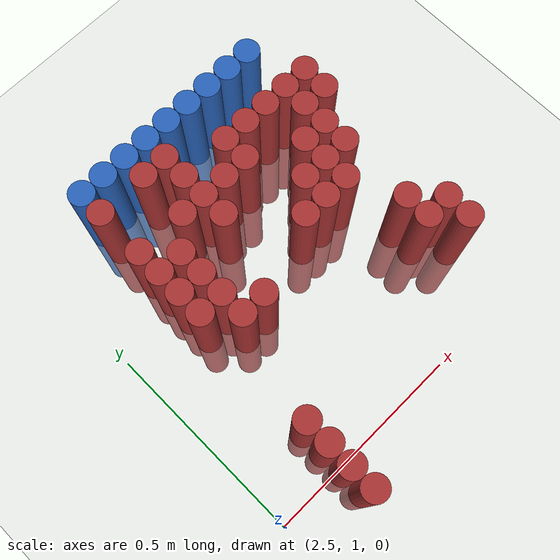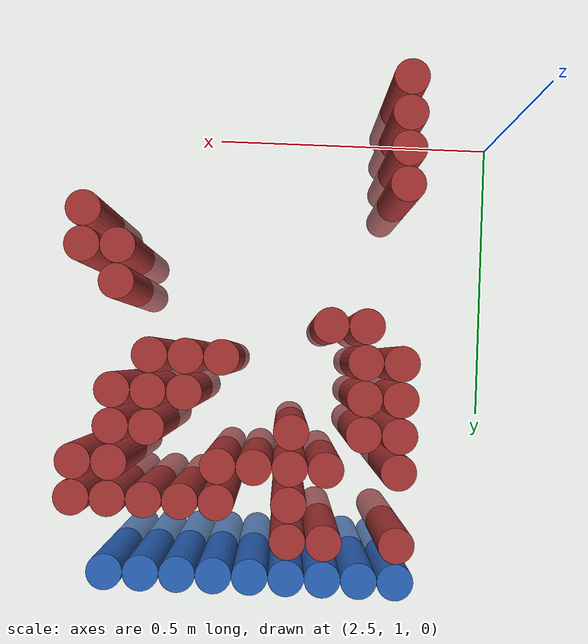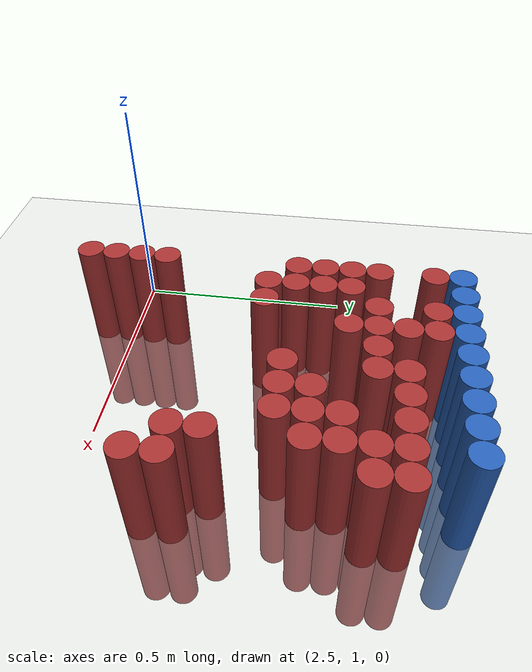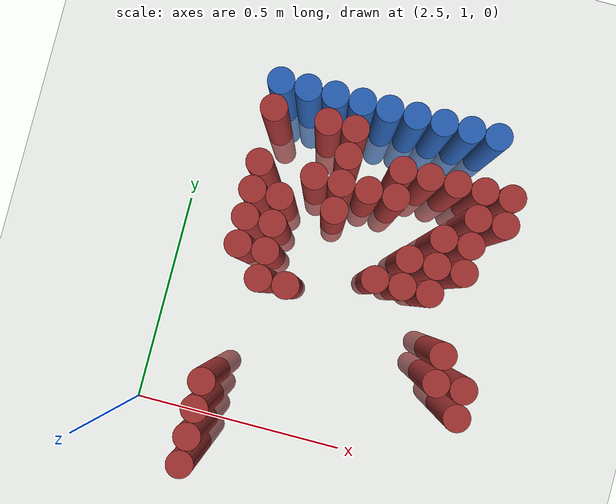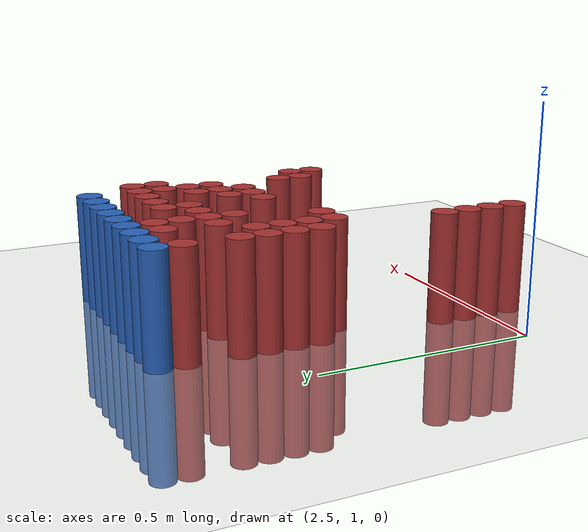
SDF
<sdf version="1.6">
 <world name="default">
  <model name="ground_plane">
   <static>1</static>
   <link name="link">
    <collision name="collision">
     <geometry><plane><normal>0 0 1</normal><size>100 100</size></plane></geometry>
     <surface><friction><ode><mu>100</mu><mu2>50</mu2></ode></friction></surface>
    </collision>
    <visual name="visual">
     <cast_shadows>0</cast_shadows>
     <geometry><plane><normal>0 0 1</normal><size>100 100</size></plane></geometry>
     <material>
      <script><uri>file://media/materials/scripts/gazebo.material</uri><name>Gazebo/Grey</name></script>
     </material>
    </visual>
   </link>
  </model>
  <model name="unit_cylinder_105">
   <static>1</static>
   <pose>2.670000 1.770000 0.000000 0.000000 0.000000 0.000000</pose>
   <link name="link">
    <inertial>
     <mass>1</mass>
     <inertia><ixx>0.145833</ixx><ixy>0</ixy><ixz>0</ixz><iyy>0.145833</iyy><iyz>0</iyz><izz>0.125</izz></inertia>
    </inertial>
    <collision name="collision">
     <geometry><cylinder><radius>0.030000</radius><length>0.5</length></cylinder></geometry>
    </collision>
    <visual name="visual">
     <geometry><cylinder><radius>0.030000</radius><length>0.5</length></cylinder></geometry>
     <material>
      <ambient>0.152000 0.379000 0.720000 1</ambient>
      <diffuse>0.152000 0.379000 0.720000 1</diffuse>
     </material>
     <material>
      <script><name>Gazebo/Grey</name><uri>file://media/materials/scripts/gazebo.material</uri></script>
     </material>
    </visual>
   </link>
  </model>
  <model name="unit_cylinder_106">
   <static>1</static>
   <pose>2.730000 1.770000 0.000000 0.000000 0.000000 0.000000</pose>
   <link name="link">
    <inertial>
     <mass>1</mass>
     <inertia><ixx>0.145833</ixx><ixy>0</ixy><ixz>0</ixz><iyy>0.145833</iyy><iyz>0</iyz><izz>0.125</izz></inertia>
    </inertial>
    <collision name="collision">
     <geometry><cylinder><radius>0.030000</radius><length>0.5</length></cylinder></geometry>
    </collision>
    <visual name="visual">
     <geometry><cylinder><radius>0.030000</radius><length>0.5</length></cylinder></geometry>
     <material>
      <ambient>0.152000 0.379000 0.720000 1</ambient>
      <diffuse>0.152000 0.379000 0.720000 1</diffuse>
     </material>
     <material>
      <script><name>Gazebo/Grey</name><uri>file://media/materials/scripts/gazebo.material</uri></script>
     </material>
    </visual>
   </link>
  </model>
  <model name="unit_cylinder_107">
   <static>1</static>
   <pose>2.790000 1.770000 0.000000 0.000000 0.000000 0.000000</pose>
   <link name="link">
    <inertial>
     <mass>1</mass>
     <inertia><ixx>0.145833</ixx><ixy>0</ixy><ixz>0</ixz><iyy>0.145833</iyy><iyz>0</iyz><izz>0.125</izz></inertia>
    </inertial>
    <collision name="collision">
     <geometry><cylinder><radius>0.030000</radius><length>0.5</length></cylinder></geometry>
    </collision>
    <visual name="visual">
     <geometry><cylinder><radius>0.030000</radius><length>0.5</length></cylinder></geometry>
     <material>
      <ambient>0.152000 0.379000 0.720000 1</ambient>
      <diffuse>0.152000 0.379000 0.720000 1</diffuse>
     </material>
     <material>
      <script><name>Gazebo/Grey</name><uri>file://media/materials/scripts/gazebo.material</uri></script>
     </material>
    </visual>
   </link>
  </model>
  <model name="unit_cylinder_108">
   <static>1</static>
   <pose>2.850000 1.770000 0.000000 0.000000 0.000000 0.000000</pose>
   <link name="link">
    <inertial>
     <mass>1</mass>
     <inertia><ixx>0.145833</ixx><ixy>0</ixy><ixz>0</ixz><iyy>0.145833</iyy><iyz>0</iyz><izz>0.125</izz></inertia>
    </inertial>
    <collision name="collision">
     <geometry><cylinder><radius>0.030000</radius><length>0.5</length></cylinder></geometry>
    </collision>
    <visual name="visual">
     <geometry><cylinder><radius>0.030000</radius><length>0.5</length></cylinder></geometry>
     <material>
      <ambient>0.152000 0.379000 0.720000 1</ambient>
      <diffuse>0.152000 0.379000 0.720000 1</diffuse>
     </material>
     <material>
      <script><name>Gazebo/Grey</name><uri>file://media/materials/scripts/gazebo.material</uri></script>
     </material>
    </visual>
   </link>
  </model>
  <model name="unit_cylinder_109">
   <static>1</static>
   <pose>2.910000 1.770000 0.000000 0.000000 0.000000 0.000000</pose>
   <link name="link">
    <inertial>
     <mass>1</mass>
     <inertia><ixx>0.145833</ixx><ixy>0</ixy><ixz>0</ixz><iyy>0.145833</iyy><iyz>0</iyz><izz>0.125</izz></inertia>
    </inertial>
    <collision name="collision">
     <geometry><cylinder><radius>0.030000</radius><length>0.5</length></cylinder></geometry>
    </collision>
    <visual name="visual">
     <geometry><cylinder><radius>0.030000</radius><length>0.5</length></cylinder></geometry>
     <material>
      <ambient>0.152000 0.379000 0.720000 1</ambient>
      <diffuse>0.152000 0.379000 0.720000 1</diffuse>
     </material>
     <material>
      <script><name>Gazebo/Grey</name><uri>file://media/materials/scripts/gazebo.material</uri></script>
     </material>
    </visual>
   </link>
  </model>
  <model name="unit_cylinder_110">
   <static>1</static>
   <pose>2.970000 1.770000 0.000000 0.000000 0.000000 0.000000</pose>
   <link name="link">
    <inertial>
     <mass>1</mass>
     <inertia><ixx>0.145833</ixx><ixy>0</ixy><ixz>0</ixz><iyy>0.145833</iyy><iyz>0</iyz><izz>0.125</izz></inertia>
    </inertial>
    <collision name="collision">
     <geometry><cylinder><radius>0.030000</radius><length>0.5</length></cylinder></geometry>
    </collision>
    <visual name="visual">
     <geometry><cylinder><radius>0.030000</radius><length>0.5</length></cylinder></geometry>
     <material>
      <ambient>0.152000 0.379000 0.720000 1</ambient>
      <diffuse>0.152000 0.379000 0.720000 1</diffuse>
     </material>
     <material>
      <script><name>Gazebo/Grey</name><uri>file://media/materials/scripts/gazebo.material</uri></script>
     </material>
    </visual>
   </link>
  </model>
  <model name="unit_cylinder_111">
   <static>1</static>
   <pose>3.030000 1.770000 0.000000 0.000000 0.000000 0.000000</pose>
   <link name="link">
    <inertial>
     <mass>1</mass>
     <inertia><ixx>0.145833</ixx><ixy>0</ixy><ixz>0</ixz><iyy>0.145833</iyy><iyz>0</iyz><izz>0.125</izz></inertia>
    </inertial>
    <collision name="collision">
     <geometry><cylinder><radius>0.030000</radius><length>0.5</length></cylinder></geometry>
    </collision>
    <visual name="visual">
     <geometry><cylinder><radius>0.030000</radius><length>0.5</length></cylinder></geometry>
     <material>
      <ambient>0.152000 0.379000 0.720000 1</ambient>
      <diffuse>0.152000 0.379000 0.720000 1</diffuse>
     </material>
     <material>
      <script><name>Gazebo/Grey</name><uri>file://media/materials/scripts/gazebo.material</uri></script>
     </material>
    </visual>
   </link>
  </model>
  <model name="unit_cylinder_112">
   <static>1</static>
   <pose>3.090000 1.770000 0.000000 0.000000 0.000000 0.000000</pose>
   <link name="link">
    <inertial>
     <mass>1</mass>
     <inertia><ixx>0.145833</ixx><ixy>0</ixy><ixz>0</ixz><iyy>0.145833</iyy><iyz>0</iyz><izz>0.125</izz></inertia>
    </inertial>
    <collision name="collision">
     <geometry><cylinder><radius>0.030000</radius><length>0.5</length></cylinder></geometry>
    </collision>
    <visual name="visual">
     <geometry><cylinder><radius>0.030000</radius><length>0.5</length></cylinder></geometry>
     <material>
      <ambient>0.152000 0.379000 0.720000 1</ambient>
      <diffuse>0.152000 0.379000 0.720000 1</diffuse>
     </material>
     <material>
      <script><name>Gazebo/Grey</name><uri>file://media/materials/scripts/gazebo.material</uri></script>
     </material>
    </visual>
   </link>
  </model>
  <model name="unit_cylinder_113">
   <static>1</static>
   <pose>3.150000 1.770000 0.000000 0.000000 0.000000 0.000000</pose>
   <link name="link">
    <inertial>
     <mass>1</mass>
     <inertia><ixx>0.145833</ixx><ixy>0</ixy><ixz>0</ixz><iyy>0.145833</iyy><iyz>0</iyz><izz>0.125</izz></inertia>
    </inertial>
    <collision name="collision">
     <geometry><cylinder><radius>0.030000</radius><length>0.5</length></cylinder></geometry>
    </collision>
    <visual name="visual">
     <geometry><cylinder><radius>0.030000</radius><length>0.5</length></cylinder></geometry>
     <material>
      <ambient>0.152000 0.379000 0.720000 1</ambient>
      <diffuse>0.152000 0.379000 0.720000 1</diffuse>
     </material>
     <material>
      <script><name>Gazebo/Grey</name><uri>file://media/materials/scripts/gazebo.material</uri></script>
     </material>
    </visual>
   </link>
  </model>
  <model name="unit_cylinder_127">
   <static>1</static>
   <pose>2.670000 1.710000 0.000000 0.000000 0.000000 0.000000</pose>
   <link name="link">
    <inertial>
     <mass>1</mass>
     <inertia><ixx>0.145833</ixx><ixy>0</ixy><ixz>0</ixz><iyy>0.145833</iyy><iyz>0</iyz><izz>0.125</izz></inertia>
    </inertial>
    <collision name="collision">
     <geometry><cylinder><radius>0.030000</radius><length>0.5</length></cylinder></geometry>
    </collision>
    <visual name="visual">
     <geometry><cylinder><radius>0.030000</radius><length>0.5</length></cylinder></geometry>
     <material>
      <ambient>0.648000 0.192000 0.192000 1</ambient>
      <diffuse>0.648000 0.192000 0.192000 1</diffuse>
     </material>
     <material>
      <script><name>Gazebo/Grey</name><uri>file://media/materials/scripts/gazebo.material</uri></script>
     </material>
    </visual>
   </link>
  </model>
  <model name="unit_cylinder_128">
   <static>1</static>
   <pose>2.790000 1.710000 0.000000 0.000000 0.000000 0.000000</pose>
   <link name="link">
    <inertial>
     <mass>1</mass>
     <inertia><ixx>0.145833</ixx><ixy>0</ixy><ixz>0</ixz><iyy>0.145833</iyy><iyz>0</iyz><izz>0.125</izz></inertia>
    </inertial>
    <collision name="collision">
     <geometry><cylinder><radius>0.030000</radius><length>0.5</length></cylinder></geometry>
    </collision>
    <visual name="visual">
     <geometry><cylinder><radius>0.030000</radius><length>0.5</length></cylinder></geometry>
     <material>
      <ambient>0.648000 0.192000 0.192000 1</ambient>
      <diffuse>0.648000 0.192000 0.192000 1</diffuse>
     </material>
     <material>
      <script><name>Gazebo/Grey</name><uri>file://media/materials/scripts/gazebo.material</uri></script>
     </material>
    </visual>
   </link>
  </model>
  <model name="unit_cylinder_129">
   <static>1</static>
   <pose>2.850000 1.710000 0.000000 0.000000 0.000000 0.000000</pose>
   <link name="link">
    <inertial>
     <mass>1</mass>
     <inertia><ixx>0.145833</ixx><ixy>0</ixy><ixz>0</ixz><iyy>0.145833</iyy><iyz>0</iyz><izz>0.125</izz></inertia>
    </inertial>
    <collision name="collision">
     <geometry><cylinder><radius>0.030000</radius><length>0.5</length></cylinder></geometry>
    </collision>
    <visual name="visual">
     <geometry><cylinder><radius>0.030000</radius><length>0.5</length></cylinder></geometry>
     <material>
      <ambient>0.648000 0.192000 0.192000 1</ambient>
      <diffuse>0.648000 0.192000 0.192000 1</diffuse>
     </material>
     <material>
      <script><name>Gazebo/Grey</name><uri>file://media/materials/scripts/gazebo.material</uri></script>
     </material>
    </visual>
   </link>
  </model>
  <model name="unit_cylinder_140">
   <static>1</static>
   <pose>2.850000 1.650000 0.000000 0.000000 0.000000 0.000000</pose>
   <link name="link">
    <inertial>
     <mass>1</mass>
     <inertia><ixx>0.145833</ixx><ixy>0</ixy><ixz>0</ixz><iyy>0.145833</iyy><iyz>0</iyz><izz>0.125</izz></inertia>
    </inertial>
    <collision name="collision">
     <geometry><cylinder><radius>0.030000</radius><length>0.5</length></cylinder></geometry>
    </collision>
    <visual name="visual">
     <geometry><cylinder><radius>0.030000</radius><length>0.5</length></cylinder></geometry>
     <material>
      <ambient>0.648000 0.192000 0.192000 1</ambient>
      <diffuse>0.648000 0.192000 0.192000 1</diffuse>
     </material>
     <material>
      <script><name>Gazebo/Grey</name><uri>file://media/materials/scripts/gazebo.material</uri></script>
     </material>
    </visual>
   </link>
  </model>
  <model name="unit_cylinder_141">
   <static>1</static>
   <pose>2.970000 1.650000 0.000000 0.000000 0.000000 0.000000</pose>
   <link name="link">
    <inertial>
     <mass>1</mass>
     <inertia><ixx>0.145833</ixx><ixy>0</ixy><ixz>0</ixz><iyy>0.145833</iyy><iyz>0</iyz><izz>0.125</izz></inertia>
    </inertial>
    <collision name="collision">
     <geometry><cylinder><radius>0.030000</radius><length>0.5</length></cylinder></geometry>
    </collision>
    <visual name="visual">
     <geometry><cylinder><radius>0.030000</radius><length>0.5</length></cylinder></geometry>
     <material>
      <ambient>0.648000 0.192000 0.192000 1</ambient>
      <diffuse>0.648000 0.192000 0.192000 1</diffuse>
     </material>
     <material>
      <script><name>Gazebo/Grey</name><uri>file://media/materials/scripts/gazebo.material</uri></script>
     </material>
    </visual>
   </link>
  </model>
  <model name="unit_cylinder_142">
   <static>1</static>
   <pose>3.030000 1.650000 0.000000 0.000000 0.000000 0.000000</pose>
   <link name="link">
    <inertial>
     <mass>1</mass>
     <inertia><ixx>0.145833</ixx><ixy>0</ixy><ixz>0</ixz><iyy>0.145833</iyy><iyz>0</iyz><izz>0.125</izz></inertia>
    </inertial>
    <collision name="collision">
     <geometry><cylinder><radius>0.030000</radius><length>0.5</length></cylinder></geometry>
    </collision>
    <visual name="visual">
     <geometry><cylinder><radius>0.030000</radius><length>0.5</length></cylinder></geometry>
     <material>
      <ambient>0.648000 0.192000 0.192000 1</ambient>
      <diffuse>0.648000 0.192000 0.192000 1</diffuse>
     </material>
     <material>
      <script><name>Gazebo/Grey</name><uri>file://media/materials/scripts/gazebo.material</uri></script>
     </material>
    </visual>
   </link>
  </model>
  <model name="unit_cylinder_143">
   <static>1</static>
   <pose>3.090000 1.650000 0.000000 0.000000 0.000000 0.000000</pose>
   <link name="link">
    <inertial>
     <mass>1</mass>
     <inertia><ixx>0.145833</ixx><ixy>0</ixy><ixz>0</ixz><iyy>0.145833</iyy><iyz>0</iyz><izz>0.125</izz></inertia>
    </inertial>
    <collision name="collision">
     <geometry><cylinder><radius>0.030000</radius><length>0.5</length></cylinder></geometry>
    </collision>
    <visual name="visual">
     <geometry><cylinder><radius>0.030000</radius><length>0.5</length></cylinder></geometry>
     <material>
      <ambient>0.648000 0.192000 0.192000 1</ambient>
      <diffuse>0.648000 0.192000 0.192000 1</diffuse>
     </material>
     <material>
      <script><name>Gazebo/Grey</name><uri>file://media/materials/scripts/gazebo.material</uri></script>
     </material>
    </visual>
   </link>
  </model>
  <model name="unit_cylinder_144">
   <static>1</static>
   <pose>3.150000 1.650000 0.000000 0.000000 0.000000 0.000000</pose>
   <link name="link">
    <inertial>
     <mass>1</mass>
     <inertia><ixx>0.145833</ixx><ixy>0</ixy><ixz>0</ixz><iyy>0.145833</iyy><iyz>0</iyz><izz>0.125</izz></inertia>
    </inertial>
    <collision name="collision">
     <geometry><cylinder><radius>0.030000</radius><length>0.5</length></cylinder></geometry>
    </collision>
    <visual name="visual">
     <geometry><cylinder><radius>0.030000</radius><length>0.5</length></cylinder></geometry>
     <material>
      <ambient>0.648000 0.192000 0.192000 1</ambient>
      <diffuse>0.648000 0.192000 0.192000 1</diffuse>
     </material>
     <material>
      <script><name>Gazebo/Grey</name><uri>file://media/materials/scripts/gazebo.material</uri></script>
     </material>
    </visual>
   </link>
  </model>
  <model name="unit_cylinder_145">
   <static>1</static>
   <pose>3.210000 1.650000 0.000000 0.000000 0.000000 0.000000</pose>
   <link name="link">
    <inertial>
     <mass>1</mass>
     <inertia><ixx>0.145833</ixx><ixy>0</ixy><ixz>0</ixz><iyy>0.145833</iyy><iyz>0</iyz><izz>0.125</izz></inertia>
    </inertial>
    <collision name="collision">
     <geometry><cylinder><radius>0.030000</radius><length>0.5</length></cylinder></geometry>
    </collision>
    <visual name="visual">
     <geometry><cylinder><radius>0.030000</radius><length>0.5</length></cylinder></geometry>
     <material>
      <ambient>0.648000 0.192000 0.192000 1</ambient>
      <diffuse>0.648000 0.192000 0.192000 1</diffuse>
     </material>
     <material>
      <script><name>Gazebo/Grey</name><uri>file://media/materials/scripts/gazebo.material</uri></script>
     </material>
    </visual>
   </link>
  </model>
  <model name="unit_cylinder_157">
   <static>1</static>
   <pose>2.670000 1.590000 0.000000 0.000000 0.000000 0.000000</pose>
   <link name="link">
    <inertial>
     <mass>1</mass>
     <inertia><ixx>0.145833</ixx><ixy>0</ixy><ixz>0</ixz><iyy>0.145833</iyy><iyz>0</iyz><izz>0.125</izz></inertia>
    </inertial>
    <collision name="collision">
     <geometry><cylinder><radius>0.030000</radius><length>0.5</length></cylinder></geometry>
    </collision>
    <visual name="visual">
     <geometry><cylinder><radius>0.030000</radius><length>0.5</length></cylinder></geometry>
     <material>
      <ambient>0.648000 0.192000 0.192000 1</ambient>
      <diffuse>0.648000 0.192000 0.192000 1</diffuse>
     </material>
     <material>
      <script><name>Gazebo/Grey</name><uri>file://media/materials/scripts/gazebo.material</uri></script>
     </material>
    </visual>
   </link>
  </model>
  <model name="unit_cylinder_158">
   <static>1</static>
   <pose>2.790000 1.590000 0.000000 0.000000 0.000000 0.000000</pose>
   <link name="link">
    <inertial>
     <mass>1</mass>
     <inertia><ixx>0.145833</ixx><ixy>0</ixy><ixz>0</ixz><iyy>0.145833</iyy><iyz>0</iyz><izz>0.125</izz></inertia>
    </inertial>
    <collision name="collision">
     <geometry><cylinder><radius>0.030000</radius><length>0.5</length></cylinder></geometry>
    </collision>
    <visual name="visual">
     <geometry><cylinder><radius>0.030000</radius><length>0.5</length></cylinder></geometry>
     <material>
      <ambient>0.648000 0.192000 0.192000 1</ambient>
      <diffuse>0.648000 0.192000 0.192000 1</diffuse>
     </material>
     <material>
      <script><name>Gazebo/Grey</name><uri>file://media/materials/scripts/gazebo.material</uri></script>
     </material>
    </visual>
   </link>
  </model>
  <model name="unit_cylinder_159">
   <static>1</static>
   <pose>2.850000 1.590000 0.000000 0.000000 0.000000 0.000000</pose>
   <link name="link">
    <inertial>
     <mass>1</mass>
     <inertia><ixx>0.145833</ixx><ixy>0</ixy><ixz>0</ixz><iyy>0.145833</iyy><iyz>0</iyz><izz>0.125</izz></inertia>
    </inertial>
    <collision name="collision">
     <geometry><cylinder><radius>0.030000</radius><length>0.5</length></cylinder></geometry>
    </collision>
    <visual name="visual">
     <geometry><cylinder><radius>0.030000</radius><length>0.5</length></cylinder></geometry>
     <material>
      <ambient>0.648000 0.192000 0.192000 1</ambient>
      <diffuse>0.648000 0.192000 0.192000 1</diffuse>
     </material>
     <material>
      <script><name>Gazebo/Grey</name><uri>file://media/materials/scripts/gazebo.material</uri></script>
     </material>
    </visual>
   </link>
  </model>
  <model name="unit_cylinder_160">
   <static>1</static>
   <pose>2.910000 1.590000 0.000000 0.000000 0.000000 0.000000</pose>
   <link name="link">
    <inertial>
     <mass>1</mass>
     <inertia><ixx>0.145833</ixx><ixy>0</ixy><ixz>0</ixz><iyy>0.145833</iyy><iyz>0</iyz><izz>0.125</izz></inertia>
    </inertial>
    <collision name="collision">
     <geometry><cylinder><radius>0.030000</radius><length>0.5</length></cylinder></geometry>
    </collision>
    <visual name="visual">
     <geometry><cylinder><radius>0.030000</radius><length>0.5</length></cylinder></geometry>
     <material>
      <ambient>0.648000 0.192000 0.192000 1</ambient>
      <diffuse>0.648000 0.192000 0.192000 1</diffuse>
     </material>
     <material>
      <script><name>Gazebo/Grey</name><uri>file://media/materials/scripts/gazebo.material</uri></script>
     </material>
    </visual>
   </link>
  </model>
  <model name="unit_cylinder_161">
   <static>1</static>
   <pose>2.970000 1.590000 0.000000 0.000000 0.000000 0.000000</pose>
   <link name="link">
    <inertial>
     <mass>1</mass>
     <inertia><ixx>0.145833</ixx><ixy>0</ixy><ixz>0</ixz><iyy>0.145833</iyy><iyz>0</iyz><izz>0.125</izz></inertia>
    </inertial>
    <collision name="collision">
     <geometry><cylinder><radius>0.030000</radius><length>0.5</length></cylinder></geometry>
    </collision>
    <visual name="visual">
     <geometry><cylinder><radius>0.030000</radius><length>0.5</length></cylinder></geometry>
     <material>
      <ambient>0.648000 0.192000 0.192000 1</ambient>
      <diffuse>0.648000 0.192000 0.192000 1</diffuse>
     </material>
     <material>
      <script><name>Gazebo/Grey</name><uri>file://media/materials/scripts/gazebo.material</uri></script>
     </material>
    </visual>
   </link>
  </model>
  <model name="unit_cylinder_162">
   <static>1</static>
   <pose>3.150000 1.590000 0.000000 0.000000 0.000000 0.000000</pose>
   <link name="link">
    <inertial>
     <mass>1</mass>
     <inertia><ixx>0.145833</ixx><ixy>0</ixy><ixz>0</ixz><iyy>0.145833</iyy><iyz>0</iyz><izz>0.125</izz></inertia>
    </inertial>
    <collision name="collision">
     <geometry><cylinder><radius>0.030000</radius><length>0.5</length></cylinder></geometry>
    </collision>
    <visual name="visual">
     <geometry><cylinder><radius>0.030000</radius><length>0.5</length></cylinder></geometry>
     <material>
      <ambient>0.648000 0.192000 0.192000 1</ambient>
      <diffuse>0.648000 0.192000 0.192000 1</diffuse>
     </material>
     <material>
      <script><name>Gazebo/Grey</name><uri>file://media/materials/scripts/gazebo.material</uri></script>
     </material>
    </visual>
   </link>
  </model>
  <model name="unit_cylinder_163">
   <static>1</static>
   <pose>3.210000 1.590000 0.000000 0.000000 0.000000 0.000000</pose>
   <link name="link">
    <inertial>
     <mass>1</mass>
     <inertia><ixx>0.145833</ixx><ixy>0</ixy><ixz>0</ixz><iyy>0.145833</iyy><iyz>0</iyz><izz>0.125</izz></inertia>
    </inertial>
    <collision name="collision">
     <geometry><cylinder><radius>0.030000</radius><length>0.5</length></cylinder></geometry>
    </collision>
    <visual name="visual">
     <geometry><cylinder><radius>0.030000</radius><length>0.5</length></cylinder></geometry>
     <material>
      <ambient>0.648000 0.192000 0.192000 1</ambient>
      <diffuse>0.648000 0.192000 0.192000 1</diffuse>
     </material>
     <material>
      <script><name>Gazebo/Grey</name><uri>file://media/materials/scripts/gazebo.material</uri></script>
     </material>
    </visual>
   </link>
  </model>
  <model name="unit_cylinder_169">
   <static>1</static>
   <pose>2.670000 1.530000 0.000000 0.000000 0.000000 0.000000</pose>
   <link name="link">
    <inertial>
     <mass>1</mass>
     <inertia><ixx>0.145833</ixx><ixy>0</ixy><ixz>0</ixz><iyy>0.145833</iyy><iyz>0</iyz><izz>0.125</izz></inertia>
    </inertial>
    <collision name="collision">
     <geometry><cylinder><radius>0.030000</radius><length>0.5</length></cylinder></geometry>
    </collision>
    <visual name="visual">
     <geometry><cylinder><radius>0.030000</radius><length>0.5</length></cylinder></geometry>
     <material>
      <ambient>0.648000 0.192000 0.192000 1</ambient>
      <diffuse>0.648000 0.192000 0.192000 1</diffuse>
     </material>
     <material>
      <script><name>Gazebo/Grey</name><uri>file://media/materials/scripts/gazebo.material</uri></script>
     </material>
    </visual>
   </link>
  </model>
  <model name="unit_cylinder_170">
   <static>1</static>
   <pose>2.730000 1.530000 0.000000 0.000000 0.000000 0.000000</pose>
   <link name="link">
    <inertial>
     <mass>1</mass>
     <inertia><ixx>0.145833</ixx><ixy>0</ixy><ixz>0</ixz><iyy>0.145833</iyy><iyz>0</iyz><izz>0.125</izz></inertia>
    </inertial>
    <collision name="collision">
     <geometry><cylinder><radius>0.030000</radius><length>0.5</length></cylinder></geometry>
    </collision>
    <visual name="visual">
     <geometry><cylinder><radius>0.030000</radius><length>0.5</length></cylinder></geometry>
     <material>
      <ambient>0.648000 0.192000 0.192000 1</ambient>
      <diffuse>0.648000 0.192000 0.192000 1</diffuse>
     </material>
     <material>
      <script><name>Gazebo/Grey</name><uri>file://media/materials/scripts/gazebo.material</uri></script>
     </material>
    </visual>
   </link>
  </model>
  <model name="unit_cylinder_171">
   <static>1</static>
   <pose>2.850000 1.530000 0.000000 0.000000 0.000000 0.000000</pose>
   <link name="link">
    <inertial>
     <mass>1</mass>
     <inertia><ixx>0.145833</ixx><ixy>0</ixy><ixz>0</ixz><iyy>0.145833</iyy><iyz>0</iyz><izz>0.125</izz></inertia>
    </inertial>
    <collision name="collision">
     <geometry><cylinder><radius>0.030000</radius><length>0.5</length></cylinder></geometry>
    </collision>
    <visual name="visual">
     <geometry><cylinder><radius>0.030000</radius><length>0.5</length></cylinder></geometry>
     <material>
      <ambient>0.648000 0.192000 0.192000 1</ambient>
      <diffuse>0.648000 0.192000 0.192000 1</diffuse>
     </material>
     <material>
      <script><name>Gazebo/Grey</name><uri>file://media/materials/scripts/gazebo.material</uri></script>
     </material>
    </visual>
   </link>
  </model>
  <model name="unit_cylinder_172">
   <static>1</static>
   <pose>3.090000 1.530000 0.000000 0.000000 0.000000 0.000000</pose>
   <link name="link">
    <inertial>
     <mass>1</mass>
     <inertia><ixx>0.145833</ixx><ixy>0</ixy><ixz>0</ixz><iyy>0.145833</iyy><iyz>0</iyz><izz>0.125</izz></inertia>
    </inertial>
    <collision name="collision">
     <geometry><cylinder><radius>0.030000</radius><length>0.5</length></cylinder></geometry>
    </collision>
    <visual name="visual">
     <geometry><cylinder><radius>0.030000</radius><length>0.5</length></cylinder></geometry>
     <material>
      <ambient>0.648000 0.192000 0.192000 1</ambient>
      <diffuse>0.648000 0.192000 0.192000 1</diffuse>
     </material>
     <material>
      <script><name>Gazebo/Grey</name><uri>file://media/materials/scripts/gazebo.material</uri></script>
     </material>
    </visual>
   </link>
  </model>
  <model name="unit_cylinder_173">
   <static>1</static>
   <pose>3.150000 1.530000 0.000000 0.000000 0.000000 0.000000</pose>
   <link name="link">
    <inertial>
     <mass>1</mass>
     <inertia><ixx>0.145833</ixx><ixy>0</ixy><ixz>0</ixz><iyy>0.145833</iyy><iyz>0</iyz><izz>0.125</izz></inertia>
    </inertial>
    <collision name="collision">
     <geometry><cylinder><radius>0.030000</radius><length>0.5</length></cylinder></geometry>
    </collision>
    <visual name="visual">
     <geometry><cylinder><radius>0.030000</radius><length>0.5</length></cylinder></geometry>
     <material>
      <ambient>0.648000 0.192000 0.192000 1</ambient>
      <diffuse>0.648000 0.192000 0.192000 1</diffuse>
     </material>
     <material>
      <script><name>Gazebo/Grey</name><uri>file://media/materials/scripts/gazebo.material</uri></script>
     </material>
    </visual>
   </link>
  </model>
  <model name="unit_cylinder_179">
   <static>1</static>
   <pose>2.670000 1.470000 0.000000 0.000000 0.000000 0.000000</pose>
   <link name="link">
    <inertial>
     <mass>1</mass>
     <inertia><ixx>0.145833</ixx><ixy>0</ixy><ixz>0</ixz><iyy>0.145833</iyy><iyz>0</iyz><izz>0.125</izz></inertia>
    </inertial>
    <collision name="collision">
     <geometry><cylinder><radius>0.030000</radius><length>0.5</length></cylinder></geometry>
    </collision>
    <visual name="visual">
     <geometry><cylinder><radius>0.030000</radius><length>0.5</length></cylinder></geometry>
     <material>
      <ambient>0.648000 0.192000 0.192000 1</ambient>
      <diffuse>0.648000 0.192000 0.192000 1</diffuse>
     </material>
     <material>
      <script><name>Gazebo/Grey</name><uri>file://media/materials/scripts/gazebo.material</uri></script>
     </material>
    </visual>
   </link>
  </model>
  <model name="unit_cylinder_180">
   <static>1</static>
   <pose>2.730000 1.470000 0.000000 0.000000 0.000000 0.000000</pose>
   <link name="link">
    <inertial>
     <mass>1</mass>
     <inertia><ixx>0.145833</ixx><ixy>0</ixy><ixz>0</ixz><iyy>0.145833</iyy><iyz>0</iyz><izz>0.125</izz></inertia>
    </inertial>
    <collision name="collision">
     <geometry><cylinder><radius>0.030000</radius><length>0.5</length></cylinder></geometry>
    </collision>
    <visual name="visual">
     <geometry><cylinder><radius>0.030000</radius><length>0.5</length></cylinder></geometry>
     <material>
      <ambient>0.648000 0.192000 0.192000 1</ambient>
      <diffuse>0.648000 0.192000 0.192000 1</diffuse>
     </material>
     <material>
      <script><name>Gazebo/Grey</name><uri>file://media/materials/scripts/gazebo.material</uri></script>
     </material>
    </visual>
   </link>
  </model>
  <model name="unit_cylinder_181">
   <static>1</static>
   <pose>3.030000 1.470000 0.000000 0.000000 0.000000 0.000000</pose>
   <link name="link">
    <inertial>
     <mass>1</mass>
     <inertia><ixx>0.145833</ixx><ixy>0</ixy><ixz>0</ixz><iyy>0.145833</iyy><iyz>0</iyz><izz>0.125</izz></inertia>
    </inertial>
    <collision name="collision">
     <geometry><cylinder><radius>0.030000</radius><length>0.5</length></cylinder></geometry>
    </collision>
    <visual name="visual">
     <geometry><cylinder><radius>0.030000</radius><length>0.5</length></cylinder></geometry>
     <material>
      <ambient>0.648000 0.192000 0.192000 1</ambient>
      <diffuse>0.648000 0.192000 0.192000 1</diffuse>
     </material>
     <material>
      <script><name>Gazebo/Grey</name><uri>file://media/materials/scripts/gazebo.material</uri></script>
     </material>
    </visual>
   </link>
  </model>
  <model name="unit_cylinder_182">
   <static>1</static>
   <pose>3.090000 1.470000 0.000000 0.000000 0.000000 0.000000</pose>
   <link name="link">
    <inertial>
     <mass>1</mass>
     <inertia><ixx>0.145833</ixx><ixy>0</ixy><ixz>0</ixz><iyy>0.145833</iyy><iyz>0</iyz><izz>0.125</izz></inertia>
    </inertial>
    <collision name="collision">
     <geometry><cylinder><radius>0.030000</radius><length>0.5</length></cylinder></geometry>
    </collision>
    <visual name="visual">
     <geometry><cylinder><radius>0.030000</radius><length>0.5</length></cylinder></geometry>
     <material>
      <ambient>0.648000 0.192000 0.192000 1</ambient>
      <diffuse>0.648000 0.192000 0.192000 1</diffuse>
     </material>
     <material>
      <script><name>Gazebo/Grey</name><uri>file://media/materials/scripts/gazebo.material</uri></script>
     </material>
    </visual>
   </link>
  </model>
  <model name="unit_cylinder_183">
   <static>1</static>
   <pose>3.150000 1.470000 0.000000 0.000000 0.000000 0.000000</pose>
   <link name="link">
    <inertial>
     <mass>1</mass>
     <inertia><ixx>0.145833</ixx><ixy>0</ixy><ixz>0</ixz><iyy>0.145833</iyy><iyz>0</iyz><izz>0.125</izz></inertia>
    </inertial>
    <collision name="collision">
     <geometry><cylinder><radius>0.030000</radius><length>0.5</length></cylinder></geometry>
    </collision>
    <visual name="visual">
     <geometry><cylinder><radius>0.030000</radius><length>0.5</length></cylinder></geometry>
     <material>
      <ambient>0.648000 0.192000 0.192000 1</ambient>
      <diffuse>0.648000 0.192000 0.192000 1</diffuse>
     </material>
     <material>
      <script><name>Gazebo/Grey</name><uri>file://media/materials/scripts/gazebo.material</uri></script>
     </material>
    </visual>
   </link>
  </model>
  <model name="unit_cylinder_189">
   <static>1</static>
   <pose>2.670000 1.410000 0.000000 0.000000 0.000000 0.000000</pose>
   <link name="link">
    <inertial>
     <mass>1</mass>
     <inertia><ixx>0.145833</ixx><ixy>0</ixy><ixz>0</ixz><iyy>0.145833</iyy><iyz>0</iyz><izz>0.125</izz></inertia>
    </inertial>
    <collision name="collision">
     <geometry><cylinder><radius>0.030000</radius><length>0.5</length></cylinder></geometry>
    </collision>
    <visual name="visual">
     <geometry><cylinder><radius>0.030000</radius><length>0.5</length></cylinder></geometry>
     <material>
      <ambient>0.648000 0.192000 0.192000 1</ambient>
      <diffuse>0.648000 0.192000 0.192000 1</diffuse>
     </material>
     <material>
      <script><name>Gazebo/Grey</name><uri>file://media/materials/scripts/gazebo.material</uri></script>
     </material>
    </visual>
   </link>
  </model>
  <model name="unit_cylinder_190">
   <static>1</static>
   <pose>2.730000 1.410000 0.000000 0.000000 0.000000 0.000000</pose>
   <link name="link">
    <inertial>
     <mass>1</mass>
     <inertia><ixx>0.145833</ixx><ixy>0</ixy><ixz>0</ixz><iyy>0.145833</iyy><iyz>0</iyz><izz>0.125</izz></inertia>
    </inertial>
    <collision name="collision">
     <geometry><cylinder><radius>0.030000</radius><length>0.5</length></cylinder></geometry>
    </collision>
    <visual name="visual">
     <geometry><cylinder><radius>0.030000</radius><length>0.5</length></cylinder></geometry>
     <material>
      <ambient>0.648000 0.192000 0.192000 1</ambient>
      <diffuse>0.648000 0.192000 0.192000 1</diffuse>
     </material>
     <material>
      <script><name>Gazebo/Grey</name><uri>file://media/materials/scripts/gazebo.material</uri></script>
     </material>
    </visual>
   </link>
  </model>
  <model name="unit_cylinder_191">
   <static>1</static>
   <pose>2.970000 1.410000 0.000000 0.000000 0.000000 0.000000</pose>
   <link name="link">
    <inertial>
     <mass>1</mass>
     <inertia><ixx>0.145833</ixx><ixy>0</ixy><ixz>0</ixz><iyy>0.145833</iyy><iyz>0</iyz><izz>0.125</izz></inertia>
    </inertial>
    <collision name="collision">
     <geometry><cylinder><radius>0.030000</radius><length>0.5</length></cylinder></geometry>
    </collision>
    <visual name="visual">
     <geometry><cylinder><radius>0.030000</radius><length>0.5</length></cylinder></geometry>
     <material>
      <ambient>0.648000 0.192000 0.192000 1</ambient>
      <diffuse>0.648000 0.192000 0.192000 1</diffuse>
     </material>
     <material>
      <script><name>Gazebo/Grey</name><uri>file://media/materials/scripts/gazebo.material</uri></script>
     </material>
    </visual>
   </link>
  </model>
  <model name="unit_cylinder_192">
   <static>1</static>
   <pose>3.030000 1.410000 0.000000 0.000000 0.000000 0.000000</pose>
   <link name="link">
    <inertial>
     <mass>1</mass>
     <inertia><ixx>0.145833</ixx><ixy>0</ixy><ixz>0</ixz><iyy>0.145833</iyy><iyz>0</iyz><izz>0.125</izz></inertia>
    </inertial>
    <collision name="collision">
     <geometry><cylinder><radius>0.030000</radius><length>0.5</length></cylinder></geometry>
    </collision>
    <visual name="visual">
     <geometry><cylinder><radius>0.030000</radius><length>0.5</length></cylinder></geometry>
     <material>
      <ambient>0.648000 0.192000 0.192000 1</ambient>
      <diffuse>0.648000 0.192000 0.192000 1</diffuse>
     </material>
     <material>
      <script><name>Gazebo/Grey</name><uri>file://media/materials/scripts/gazebo.material</uri></script>
     </material>
    </visual>
   </link>
  </model>
  <model name="unit_cylinder_193">
   <static>1</static>
   <pose>3.090000 1.410000 0.000000 0.000000 0.000000 0.000000</pose>
   <link name="link">
    <inertial>
     <mass>1</mass>
     <inertia><ixx>0.145833</ixx><ixy>0</ixy><ixz>0</ixz><iyy>0.145833</iyy><iyz>0</iyz><izz>0.125</izz></inertia>
    </inertial>
    <collision name="collision">
     <geometry><cylinder><radius>0.030000</radius><length>0.5</length></cylinder></geometry>
    </collision>
    <visual name="visual">
     <geometry><cylinder><radius>0.030000</radius><length>0.5</length></cylinder></geometry>
     <material>
      <ambient>0.648000 0.192000 0.192000 1</ambient>
      <diffuse>0.648000 0.192000 0.192000 1</diffuse>
     </material>
     <material>
      <script><name>Gazebo/Grey</name><uri>file://media/materials/scripts/gazebo.material</uri></script>
     </material>
    </visual>
   </link>
  </model>
  <model name="unit_cylinder_199">
   <static>1</static>
   <pose>2.730000 1.350000 0.000000 0.000000 0.000000 0.000000</pose>
   <link name="link">
    <inertial>
     <mass>1</mass>
     <inertia><ixx>0.145833</ixx><ixy>0</ixy><ixz>0</ixz><iyy>0.145833</iyy><iyz>0</iyz><izz>0.125</izz></inertia>
    </inertial>
    <collision name="collision">
     <geometry><cylinder><radius>0.030000</radius><length>0.5</length></cylinder></geometry>
    </collision>
    <visual name="visual">
     <geometry><cylinder><radius>0.030000</radius><length>0.5</length></cylinder></geometry>
     <material>
      <ambient>0.648000 0.192000 0.192000 1</ambient>
      <diffuse>0.648000 0.192000 0.192000 1</diffuse>
     </material>
     <material>
      <script><name>Gazebo/Grey</name><uri>file://media/materials/scripts/gazebo.material</uri></script>
     </material>
    </visual>
   </link>
  </model>
  <model name="unit_cylinder_200">
   <static>1</static>
   <pose>2.790000 1.350000 0.000000 0.000000 0.000000 0.000000</pose>
   <link name="link">
    <inertial>
     <mass>1</mass>
     <inertia><ixx>0.145833</ixx><ixy>0</ixy><ixz>0</ixz><iyy>0.145833</iyy><iyz>0</iyz><izz>0.125</izz></inertia>
    </inertial>
    <collision name="collision">
     <geometry><cylinder><radius>0.030000</radius><length>0.5</length></cylinder></geometry>
    </collision>
    <visual name="visual">
     <geometry><cylinder><radius>0.030000</radius><length>0.5</length></cylinder></geometry>
     <material>
      <ambient>0.648000 0.192000 0.192000 1</ambient>
      <diffuse>0.648000 0.192000 0.192000 1</diffuse>
     </material>
     <material>
      <script><name>Gazebo/Grey</name><uri>file://media/materials/scripts/gazebo.material</uri></script>
     </material>
    </visual>
   </link>
  </model>
  <model name="unit_cylinder_201">
   <static>1</static>
   <pose>3.150000 1.290000 0.000000 0.000000 0.000000 0.000000</pose>
   <link name="link">
    <inertial>
     <mass>1</mass>
     <inertia><ixx>0.145833</ixx><ixy>0</ixy><ixz>0</ixz><iyy>0.145833</iyy><iyz>0</iyz><izz>0.125</izz></inertia>
    </inertial>
    <collision name="collision">
     <geometry><cylinder><radius>0.030000</radius><length>0.5</length></cylinder></geometry>
    </collision>
    <visual name="visual">
     <geometry><cylinder><radius>0.030000</radius><length>0.5</length></cylinder></geometry>
     <material>
      <ambient>0.648000 0.192000 0.192000 1</ambient>
      <diffuse>0.648000 0.192000 0.192000 1</diffuse>
     </material>
     <material>
      <script><name>Gazebo/Grey</name><uri>file://media/materials/scripts/gazebo.material</uri></script>
     </material>
    </visual>
   </link>
  </model>
  <model name="unit_cylinder_203">
   <static>1</static>
   <pose>3.150000 1.230000 0.000000 0.000000 0.000000 0.000000</pose>
   <link name="link">
    <inertial>
     <mass>1</mass>
     <inertia><ixx>0.145833</ixx><ixy>0</ixy><ixz>0</ixz><iyy>0.145833</iyy><iyz>0</iyz><izz>0.125</izz></inertia>
    </inertial>
    <collision name="collision">
     <geometry><cylinder><radius>0.030000</radius><length>0.5</length></cylinder></geometry>
    </collision>
    <visual name="visual">
     <geometry><cylinder><radius>0.030000</radius><length>0.5</length></cylinder></geometry>
     <material>
      <ambient>0.648000 0.192000 0.192000 1</ambient>
      <diffuse>0.648000 0.192000 0.192000 1</diffuse>
     </material>
     <material>
      <script><name>Gazebo/Grey</name><uri>file://media/materials/scripts/gazebo.material</uri></script>
     </material>
    </visual>
   </link>
  </model>
  <model name="unit_cylinder_204">
   <static>1</static>
   <pose>3.210000 1.230000 0.000000 0.000000 0.000000 0.000000</pose>
   <link name="link">
    <inertial>
     <mass>1</mass>
     <inertia><ixx>0.145833</ixx><ixy>0</ixy><ixz>0</ixz><iyy>0.145833</iyy><iyz>0</iyz><izz>0.125</izz></inertia>
    </inertial>
    <collision name="collision">
     <geometry><cylinder><radius>0.030000</radius><length>0.5</length></cylinder></geometry>
    </collision>
    <visual name="visual">
     <geometry><cylinder><radius>0.030000</radius><length>0.5</length></cylinder></geometry>
     <material>
      <ambient>0.648000 0.192000 0.192000 1</ambient>
      <diffuse>0.648000 0.192000 0.192000 1</diffuse>
     </material>
     <material>
      <script><name>Gazebo/Grey</name><uri>file://media/materials/scripts/gazebo.material</uri></script>
     </material>
    </visual>
   </link>
  </model>
  <model name="unit_cylinder_208">
   <static>1</static>
   <pose>3.210000 1.170000 0.000000 0.000000 0.000000 0.000000</pose>
   <link name="link">
    <inertial>
     <mass>1</mass>
     <inertia><ixx>0.145833</ixx><ixy>0</ixy><ixz>0</ixz><iyy>0.145833</iyy><iyz>0</iyz><izz>0.125</izz></inertia>
    </inertial>
    <collision name="collision">
     <geometry><cylinder><radius>0.030000</radius><length>0.5</length></cylinder></geometry>
    </collision>
    <visual name="visual">
     <geometry><cylinder><radius>0.030000</radius><length>0.5</length></cylinder></geometry>
     <material>
      <ambient>0.648000 0.192000 0.192000 1</ambient>
      <diffuse>0.648000 0.192000 0.192000 1</diffuse>
     </material>
     <material>
      <script><name>Gazebo/Grey</name><uri>file://media/materials/scripts/gazebo.material</uri></script>
     </material>
    </visual>
   </link>
  </model>
  <model name="unit_cylinder_213">
   <static>1</static>
   <pose>2.670000 1.110000 0.000000 0.000000 0.000000 0.000000</pose>
   <link name="link">
    <inertial>
     <mass>1</mass>
     <inertia><ixx>0.145833</ixx><ixy>0</ixy><ixz>0</ixz><iyy>0.145833</iyy><iyz>0</iyz><izz>0.125</izz></inertia>
    </inertial>
    <collision name="collision">
     <geometry><cylinder><radius>0.030000</radius><length>0.5</length></cylinder></geometry>
    </collision>
    <visual name="visual">
     <geometry><cylinder><radius>0.030000</radius><length>0.5</length></cylinder></geometry>
     <material>
      <ambient>0.648000 0.192000 0.192000 1</ambient>
      <diffuse>0.648000 0.192000 0.192000 1</diffuse>
     </material>
     <material>
      <script><name>Gazebo/Grey</name><uri>file://media/materials/scripts/gazebo.material</uri></script>
     </material>
    </visual>
   </link>
  </model>
  <model name="unit_cylinder_217">
   <static>1</static>
   <pose>2.670000 1.050000 0.000000 0.000000 0.000000 0.000000</pose>
   <link name="link">
    <inertial>
     <mass>1</mass>
     <inertia><ixx>0.145833</ixx><ixy>0</ixy><ixz>0</ixz><iyy>0.145833</iyy><iyz>0</iyz><izz>0.125</izz></inertia>
    </inertial>
    <collision name="collision">
     <geometry><cylinder><radius>0.030000</radius><length>0.5</length></cylinder></geometry>
    </collision>
    <visual name="visual">
     <geometry><cylinder><radius>0.030000</radius><length>0.5</length></cylinder></geometry>
     <material>
      <ambient>0.648000 0.192000 0.192000 1</ambient>
      <diffuse>0.648000 0.192000 0.192000 1</diffuse>
     </material>
     <material>
      <script><name>Gazebo/Grey</name><uri>file://media/materials/scripts/gazebo.material</uri></script>
     </material>
    </visual>
   </link>
  </model>
  <model name="unit_cylinder_224">
   <static>1</static>
   <pose>2.670000 0.990000 0.000000 0.000000 0.000000 0.000000</pose>
   <link name="link">
    <inertial>
     <mass>1</mass>
     <inertia><ixx>0.145833</ixx><ixy>0</ixy><ixz>0</ixz><iyy>0.145833</iyy><iyz>0</iyz><izz>0.125</izz></inertia>
    </inertial>
    <collision name="collision">
     <geometry><cylinder><radius>0.030000</radius><length>0.5</length></cylinder></geometry>
    </collision>
    <visual name="visual">
     <geometry><cylinder><radius>0.030000</radius><length>0.5</length></cylinder></geometry>
     <material>
      <ambient>0.648000 0.192000 0.192000 1</ambient>
      <diffuse>0.648000 0.192000 0.192000 1</diffuse>
     </material>
     <material>
      <script><name>Gazebo/Grey</name><uri>file://media/materials/scripts/gazebo.material</uri></script>
     </material>
    </visual>
   </link>
  </model>
  <model name="unit_cylinder_231">
   <static>1</static>
   <pose>2.670000 0.930000 0.000000 0.000000 0.000000 0.000000</pose>
   <link name="link">
    <inertial>
     <mass>1</mass>
     <inertia><ixx>0.145833</ixx><ixy>0</ixy><ixz>0</ixz><iyy>0.145833</iyy><iyz>0</iyz><izz>0.125</izz></inertia>
    </inertial>
    <collision name="collision">
     <geometry><cylinder><radius>0.030000</radius><length>0.5</length></cylinder></geometry>
    </collision>
    <visual name="visual">
     <geometry><cylinder><radius>0.030000</radius><length>0.5</length></cylinder></geometry>
     <material>
      <ambient>0.648000 0.192000 0.192000 1</ambient>
      <diffuse>0.648000 0.192000 0.192000 1</diffuse>
     </material>
     <material>
      <script><name>Gazebo/Grey</name><uri>file://media/materials/scripts/gazebo.material</uri></script>
     </material>
    </visual>
   </link>
  </model>
 </world>
</sdf>
